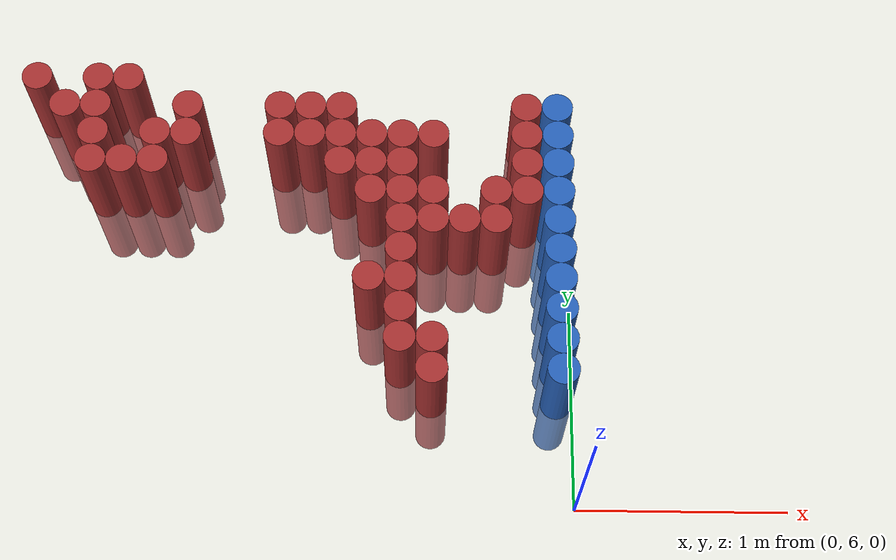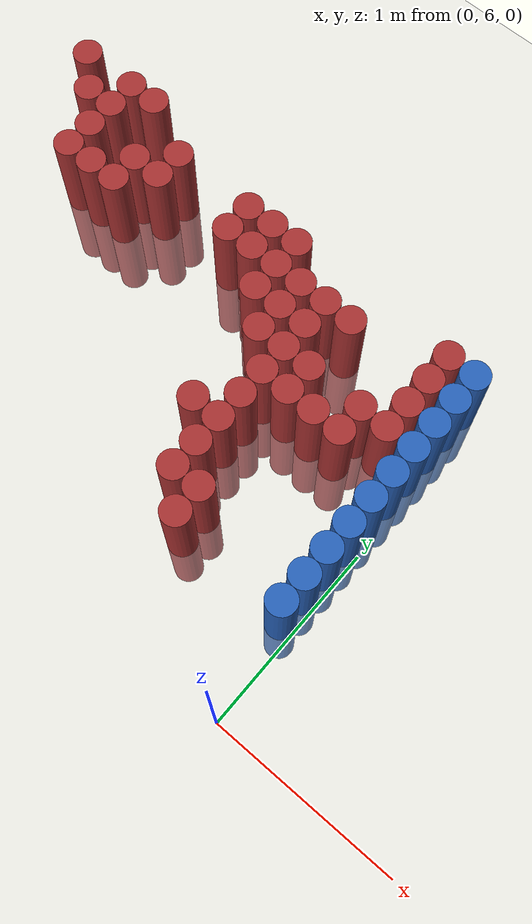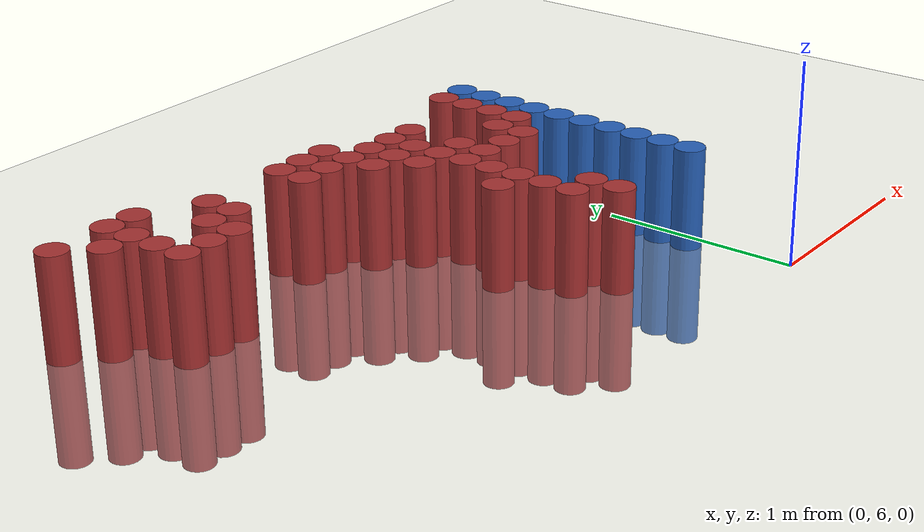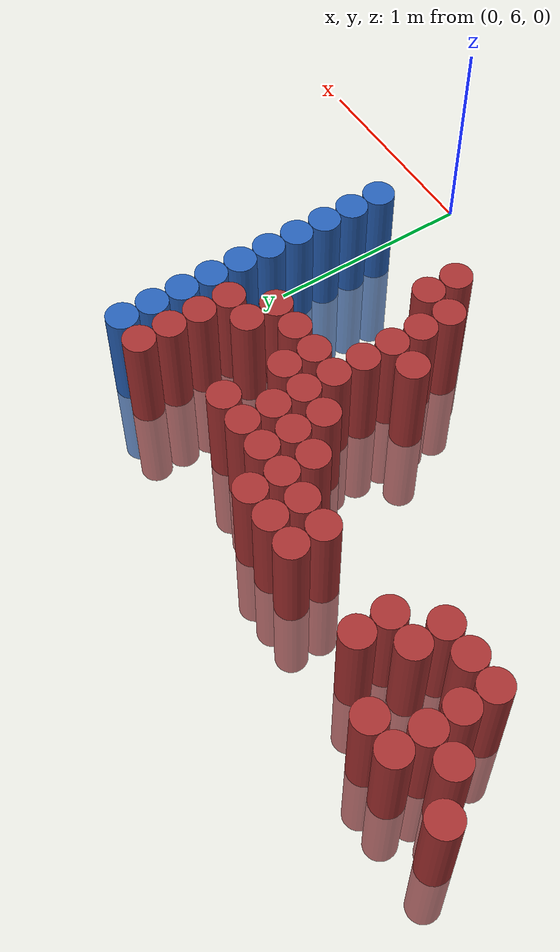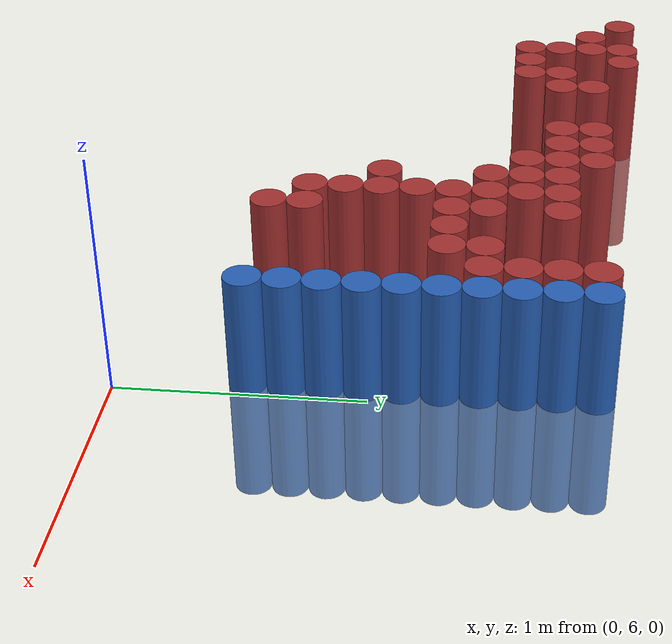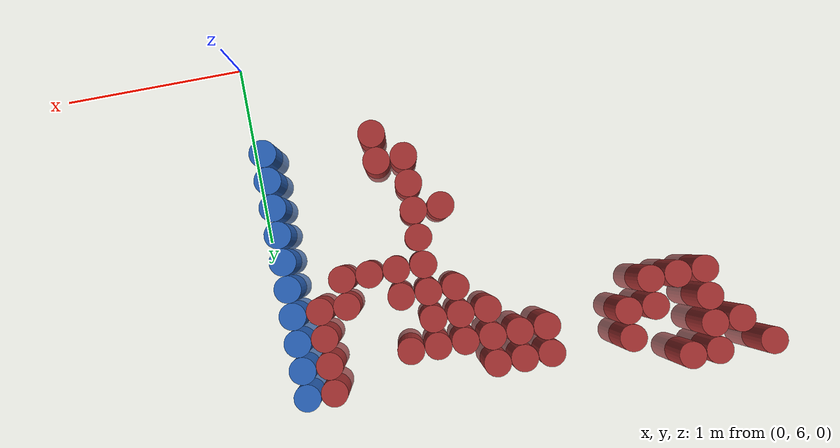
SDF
<sdf version="1.6">
 <world name="default">
  <model name="ground_plane">
   <static>1</static>
   <link name="link">
    <collision name="collision">
     <geometry><plane><normal>0 0 1</normal><size>100 100</size></plane></geometry>
     <surface><friction><ode><mu>100</mu><mu2>50</mu2></ode></friction></surface>
    </collision>
    <visual name="visual">
     <cast_shadows>0</cast_shadows>
     <geometry><plane><normal>0 0 1</normal><size>100 100</size></plane></geometry>
     <material>
      <script><uri>file://media/materials/scripts/gazebo.material</uri><name>Gazebo/Grey</name></script>
     </material>
    </visual>
   </link>
  </model>
  <model name="unit_cylinder_188">
   <static>1</static>
   <pose>-2.625000 8.025000 0.000000 0.000000 0.000000 0.000000</pose>
   <link name="link">
    <inertial>
     <mass>1</mass>
     <inertia><ixx>0.145833</ixx><ixy>0</ixy><ixz>0</ixz><iyy>0.145833</iyy><iyz>0</iyz><izz>0.125</izz></inertia>
    </inertial>
    <collision name="collision">
     <geometry><cylinder><radius>0.075000</radius><length>1</length></cylinder></geometry>
    </collision>
    <visual name="visual">
     <geometry><cylinder><radius>0.075000</radius><length>1</length></cylinder></geometry>
     <material>
      <ambient>0.648000 0.192000 0.192000 1</ambient>
      <diffuse>0.648000 0.192000 0.192000 1</diffuse>
     </material>
     <material>
      <script><name>Gazebo/Grey</name><uri>file://media/materials/scripts/gazebo.material</uri></script>
     </material>
    </visual>
   </link>
  </model>
  <model name="unit_cylinder_195">
   <static>1</static>
   <pose>-2.475000 7.875000 0.000000 0.000000 0.000000 0.000000</pose>
   <link name="link">
    <inertial>
     <mass>1</mass>
     <inertia><ixx>0.145833</ixx><ixy>0</ixy><ixz>0</ixz><iyy>0.145833</iyy><iyz>0</iyz><izz>0.125</izz></inertia>
    </inertial>
    <collision name="collision">
     <geometry><cylinder><radius>0.075000</radius><length>1</length></cylinder></geometry>
    </collision>
    <visual name="visual">
     <geometry><cylinder><radius>0.075000</radius><length>1</length></cylinder></geometry>
     <material>
      <ambient>0.648000 0.192000 0.192000 1</ambient>
      <diffuse>0.648000 0.192000 0.192000 1</diffuse>
     </material>
     <material>
      <script><name>Gazebo/Grey</name><uri>file://media/materials/scripts/gazebo.material</uri></script>
     </material>
    </visual>
   </link>
  </model>
  <model name="unit_cylinder_201">
   <static>1</static>
   <pose>-2.325000 7.575000 0.000000 0.000000 0.000000 0.000000</pose>
   <link name="link">
    <inertial>
     <mass>1</mass>
     <inertia><ixx>0.145833</ixx><ixy>0</ixy><ixz>0</ixz><iyy>0.145833</iyy><iyz>0</iyz><izz>0.125</izz></inertia>
    </inertial>
    <collision name="collision">
     <geometry><cylinder><radius>0.075000</radius><length>1</length></cylinder></geometry>
    </collision>
    <visual name="visual">
     <geometry><cylinder><radius>0.075000</radius><length>1</length></cylinder></geometry>
     <material>
      <ambient>0.648000 0.192000 0.192000 1</ambient>
      <diffuse>0.648000 0.192000 0.192000 1</diffuse>
     </material>
     <material>
      <script><name>Gazebo/Grey</name><uri>file://media/materials/scripts/gazebo.material</uri></script>
     </material>
    </visual>
   </link>
  </model>
  <model name="unit_cylinder_202">
   <static>1</static>
   <pose>-2.325000 7.725000 0.000000 0.000000 0.000000 0.000000</pose>
   <link name="link">
    <inertial>
     <mass>1</mass>
     <inertia><ixx>0.145833</ixx><ixy>0</ixy><ixz>0</ixz><iyy>0.145833</iyy><iyz>0</iyz><izz>0.125</izz></inertia>
    </inertial>
    <collision name="collision">
     <geometry><cylinder><radius>0.075000</radius><length>1</length></cylinder></geometry>
    </collision>
    <visual name="visual">
     <geometry><cylinder><radius>0.075000</radius><length>1</length></cylinder></geometry>
     <material>
      <ambient>0.648000 0.192000 0.192000 1</ambient>
      <diffuse>0.648000 0.192000 0.192000 1</diffuse>
     </material>
     <material>
      <script><name>Gazebo/Grey</name><uri>file://media/materials/scripts/gazebo.material</uri></script>
     </material>
    </visual>
   </link>
  </model>
  <model name="unit_cylinder_203">
   <static>1</static>
   <pose>-2.325000 7.875000 0.000000 0.000000 0.000000 0.000000</pose>
   <link name="link">
    <inertial>
     <mass>1</mass>
     <inertia><ixx>0.145833</ixx><ixy>0</ixy><ixz>0</ixz><iyy>0.145833</iyy><iyz>0</iyz><izz>0.125</izz></inertia>
    </inertial>
    <collision name="collision">
     <geometry><cylinder><radius>0.075000</radius><length>1</length></cylinder></geometry>
    </collision>
    <visual name="visual">
     <geometry><cylinder><radius>0.075000</radius><length>1</length></cylinder></geometry>
     <material>
      <ambient>0.648000 0.192000 0.192000 1</ambient>
      <diffuse>0.648000 0.192000 0.192000 1</diffuse>
     </material>
     <material>
      <script><name>Gazebo/Grey</name><uri>file://media/materials/scripts/gazebo.material</uri></script>
     </material>
    </visual>
   </link>
  </model>
  <model name="unit_cylinder_204">
   <static>1</static>
   <pose>-2.325000 8.025000 0.000000 0.000000 0.000000 0.000000</pose>
   <link name="link">
    <inertial>
     <mass>1</mass>
     <inertia><ixx>0.145833</ixx><ixy>0</ixy><ixz>0</ixz><iyy>0.145833</iyy><iyz>0</iyz><izz>0.125</izz></inertia>
    </inertial>
    <collision name="collision">
     <geometry><cylinder><radius>0.075000</radius><length>1</length></cylinder></geometry>
    </collision>
    <visual name="visual">
     <geometry><cylinder><radius>0.075000</radius><length>1</length></cylinder></geometry>
     <material>
      <ambient>0.648000 0.192000 0.192000 1</ambient>
      <diffuse>0.648000 0.192000 0.192000 1</diffuse>
     </material>
     <material>
      <script><name>Gazebo/Grey</name><uri>file://media/materials/scripts/gazebo.material</uri></script>
     </material>
    </visual>
   </link>
  </model>
  <model name="unit_cylinder_206">
   <static>1</static>
   <pose>-2.175000 7.575000 0.000000 0.000000 0.000000 0.000000</pose>
   <link name="link">
    <inertial>
     <mass>1</mass>
     <inertia><ixx>0.145833</ixx><ixy>0</ixy><ixz>0</ixz><iyy>0.145833</iyy><iyz>0</iyz><izz>0.125</izz></inertia>
    </inertial>
    <collision name="collision">
     <geometry><cylinder><radius>0.075000</radius><length>1</length></cylinder></geometry>
    </collision>
    <visual name="visual">
     <geometry><cylinder><radius>0.075000</radius><length>1</length></cylinder></geometry>
     <material>
      <ambient>0.648000 0.192000 0.192000 1</ambient>
      <diffuse>0.648000 0.192000 0.192000 1</diffuse>
     </material>
     <material>
      <script><name>Gazebo/Grey</name><uri>file://media/materials/scripts/gazebo.material</uri></script>
     </material>
    </visual>
   </link>
  </model>
  <model name="unit_cylinder_207">
   <static>1</static>
   <pose>-2.175000 8.025000 0.000000 0.000000 0.000000 0.000000</pose>
   <link name="link">
    <inertial>
     <mass>1</mass>
     <inertia><ixx>0.145833</ixx><ixy>0</ixy><ixz>0</ixz><iyy>0.145833</iyy><iyz>0</iyz><izz>0.125</izz></inertia>
    </inertial>
    <collision name="collision">
     <geometry><cylinder><radius>0.075000</radius><length>1</length></cylinder></geometry>
    </collision>
    <visual name="visual">
     <geometry><cylinder><radius>0.075000</radius><length>1</length></cylinder></geometry>
     <material>
      <ambient>0.648000 0.192000 0.192000 1</ambient>
      <diffuse>0.648000 0.192000 0.192000 1</diffuse>
     </material>
     <material>
      <script><name>Gazebo/Grey</name><uri>file://media/materials/scripts/gazebo.material</uri></script>
     </material>
    </visual>
   </link>
  </model>
  <model name="unit_cylinder_209">
   <static>1</static>
   <pose>-2.025000 7.575000 0.000000 0.000000 0.000000 0.000000</pose>
   <link name="link">
    <inertial>
     <mass>1</mass>
     <inertia><ixx>0.145833</ixx><ixy>0</ixy><ixz>0</ixz><iyy>0.145833</iyy><iyz>0</iyz><izz>0.125</izz></inertia>
    </inertial>
    <collision name="collision">
     <geometry><cylinder><radius>0.075000</radius><length>1</length></cylinder></geometry>
    </collision>
    <visual name="visual">
     <geometry><cylinder><radius>0.075000</radius><length>1</length></cylinder></geometry>
     <material>
      <ambient>0.648000 0.192000 0.192000 1</ambient>
      <diffuse>0.648000 0.192000 0.192000 1</diffuse>
     </material>
     <material>
      <script><name>Gazebo/Grey</name><uri>file://media/materials/scripts/gazebo.material</uri></script>
     </material>
    </visual>
   </link>
  </model>
  <model name="unit_cylinder_210">
   <static>1</static>
   <pose>-2.025000 7.725000 0.000000 0.000000 0.000000 0.000000</pose>
   <link name="link">
    <inertial>
     <mass>1</mass>
     <inertia><ixx>0.145833</ixx><ixy>0</ixy><ixz>0</ixz><iyy>0.145833</iyy><iyz>0</iyz><izz>0.125</izz></inertia>
    </inertial>
    <collision name="collision">
     <geometry><cylinder><radius>0.075000</radius><length>1</length></cylinder></geometry>
    </collision>
    <visual name="visual">
     <geometry><cylinder><radius>0.075000</radius><length>1</length></cylinder></geometry>
     <material>
      <ambient>0.648000 0.192000 0.192000 1</ambient>
      <diffuse>0.648000 0.192000 0.192000 1</diffuse>
     </material>
     <material>
      <script><name>Gazebo/Grey</name><uri>file://media/materials/scripts/gazebo.material</uri></script>
     </material>
    </visual>
   </link>
  </model>
  <model name="unit_cylinder_215">
   <static>1</static>
   <pose>-1.875000 7.725000 0.000000 0.000000 0.000000 0.000000</pose>
   <link name="link">
    <inertial>
     <mass>1</mass>
     <inertia><ixx>0.145833</ixx><ixy>0</ixy><ixz>0</ixz><iyy>0.145833</iyy><iyz>0</iyz><izz>0.125</izz></inertia>
    </inertial>
    <collision name="collision">
     <geometry><cylinder><radius>0.075000</radius><length>1</length></cylinder></geometry>
    </collision>
    <visual name="visual">
     <geometry><cylinder><radius>0.075000</radius><length>1</length></cylinder></geometry>
     <material>
      <ambient>0.648000 0.192000 0.192000 1</ambient>
      <diffuse>0.648000 0.192000 0.192000 1</diffuse>
     </material>
     <material>
      <script><name>Gazebo/Grey</name><uri>file://media/materials/scripts/gazebo.material</uri></script>
     </material>
    </visual>
   </link>
  </model>
  <model name="unit_cylinder_216">
   <static>1</static>
   <pose>-1.875000 7.875000 0.000000 0.000000 0.000000 0.000000</pose>
   <link name="link">
    <inertial>
     <mass>1</mass>
     <inertia><ixx>0.145833</ixx><ixy>0</ixy><ixz>0</ixz><iyy>0.145833</iyy><iyz>0</iyz><izz>0.125</izz></inertia>
    </inertial>
    <collision name="collision">
     <geometry><cylinder><radius>0.075000</radius><length>1</length></cylinder></geometry>
    </collision>
    <visual name="visual">
     <geometry><cylinder><radius>0.075000</radius><length>1</length></cylinder></geometry>
     <material>
      <ambient>0.648000 0.192000 0.192000 1</ambient>
      <diffuse>0.648000 0.192000 0.192000 1</diffuse>
     </material>
     <material>
      <script><name>Gazebo/Grey</name><uri>file://media/materials/scripts/gazebo.material</uri></script>
     </material>
    </visual>
   </link>
  </model>
  <model name="unit_cylinder_222">
   <static>1</static>
   <pose>-1.425000 7.725000 0.000000 0.000000 0.000000 0.000000</pose>
   <link name="link">
    <inertial>
     <mass>1</mass>
     <inertia><ixx>0.145833</ixx><ixy>0</ixy><ixz>0</ixz><iyy>0.145833</iyy><iyz>0</iyz><izz>0.125</izz></inertia>
    </inertial>
    <collision name="collision">
     <geometry><cylinder><radius>0.075000</radius><length>1</length></cylinder></geometry>
    </collision>
    <visual name="visual">
     <geometry><cylinder><radius>0.075000</radius><length>1</length></cylinder></geometry>
     <material>
      <ambient>0.648000 0.192000 0.192000 1</ambient>
      <diffuse>0.648000 0.192000 0.192000 1</diffuse>
     </material>
     <material>
      <script><name>Gazebo/Grey</name><uri>file://media/materials/scripts/gazebo.material</uri></script>
     </material>
    </visual>
   </link>
  </model>
  <model name="unit_cylinder_223">
   <static>1</static>
   <pose>-1.425000 7.875000 0.000000 0.000000 0.000000 0.000000</pose>
   <link name="link">
    <inertial>
     <mass>1</mass>
     <inertia><ixx>0.145833</ixx><ixy>0</ixy><ixz>0</ixz><iyy>0.145833</iyy><iyz>0</iyz><izz>0.125</izz></inertia>
    </inertial>
    <collision name="collision">
     <geometry><cylinder><radius>0.075000</radius><length>1</length></cylinder></geometry>
    </collision>
    <visual name="visual">
     <geometry><cylinder><radius>0.075000</radius><length>1</length></cylinder></geometry>
     <material>
      <ambient>0.648000 0.192000 0.192000 1</ambient>
      <diffuse>0.648000 0.192000 0.192000 1</diffuse>
     </material>
     <material>
      <script><name>Gazebo/Grey</name><uri>file://media/materials/scripts/gazebo.material</uri></script>
     </material>
    </visual>
   </link>
  </model>
  <model name="unit_cylinder_228">
   <static>1</static>
   <pose>-1.275000 7.725000 0.000000 0.000000 0.000000 0.000000</pose>
   <link name="link">
    <inertial>
     <mass>1</mass>
     <inertia><ixx>0.145833</ixx><ixy>0</ixy><ixz>0</ixz><iyy>0.145833</iyy><iyz>0</iyz><izz>0.125</izz></inertia>
    </inertial>
    <collision name="collision">
     <geometry><cylinder><radius>0.075000</radius><length>1</length></cylinder></geometry>
    </collision>
    <visual name="visual">
     <geometry><cylinder><radius>0.075000</radius><length>1</length></cylinder></geometry>
     <material>
      <ambient>0.648000 0.192000 0.192000 1</ambient>
      <diffuse>0.648000 0.192000 0.192000 1</diffuse>
     </material>
     <material>
      <script><name>Gazebo/Grey</name><uri>file://media/materials/scripts/gazebo.material</uri></script>
     </material>
    </visual>
   </link>
  </model>
  <model name="unit_cylinder_229">
   <static>1</static>
   <pose>-1.275000 7.875000 0.000000 0.000000 0.000000 0.000000</pose>
   <link name="link">
    <inertial>
     <mass>1</mass>
     <inertia><ixx>0.145833</ixx><ixy>0</ixy><ixz>0</ixz><iyy>0.145833</iyy><iyz>0</iyz><izz>0.125</izz></inertia>
    </inertial>
    <collision name="collision">
     <geometry><cylinder><radius>0.075000</radius><length>1</length></cylinder></geometry>
    </collision>
    <visual name="visual">
     <geometry><cylinder><radius>0.075000</radius><length>1</length></cylinder></geometry>
     <material>
      <ambient>0.648000 0.192000 0.192000 1</ambient>
      <diffuse>0.648000 0.192000 0.192000 1</diffuse>
     </material>
     <material>
      <script><name>Gazebo/Grey</name><uri>file://media/materials/scripts/gazebo.material</uri></script>
     </material>
    </visual>
   </link>
  </model>
  <model name="unit_cylinder_234">
   <static>1</static>
   <pose>-1.125000 7.575000 0.000000 0.000000 0.000000 0.000000</pose>
   <link name="link">
    <inertial>
     <mass>1</mass>
     <inertia><ixx>0.145833</ixx><ixy>0</ixy><ixz>0</ixz><iyy>0.145833</iyy><iyz>0</iyz><izz>0.125</izz></inertia>
    </inertial>
    <collision name="collision">
     <geometry><cylinder><radius>0.075000</radius><length>1</length></cylinder></geometry>
    </collision>
    <visual name="visual">
     <geometry><cylinder><radius>0.075000</radius><length>1</length></cylinder></geometry>
     <material>
      <ambient>0.648000 0.192000 0.192000 1</ambient>
      <diffuse>0.648000 0.192000 0.192000 1</diffuse>
     </material>
     <material>
      <script><name>Gazebo/Grey</name><uri>file://media/materials/scripts/gazebo.material</uri></script>
     </material>
    </visual>
   </link>
  </model>
  <model name="unit_cylinder_235">
   <static>1</static>
   <pose>-1.125000 7.725000 0.000000 0.000000 0.000000 0.000000</pose>
   <link name="link">
    <inertial>
     <mass>1</mass>
     <inertia><ixx>0.145833</ixx><ixy>0</ixy><ixz>0</ixz><iyy>0.145833</iyy><iyz>0</iyz><izz>0.125</izz></inertia>
    </inertial>
    <collision name="collision">
     <geometry><cylinder><radius>0.075000</radius><length>1</length></cylinder></geometry>
    </collision>
    <visual name="visual">
     <geometry><cylinder><radius>0.075000</radius><length>1</length></cylinder></geometry>
     <material>
      <ambient>0.648000 0.192000 0.192000 1</ambient>
      <diffuse>0.648000 0.192000 0.192000 1</diffuse>
     </material>
     <material>
      <script><name>Gazebo/Grey</name><uri>file://media/materials/scripts/gazebo.material</uri></script>
     </material>
    </visual>
   </link>
  </model>
  <model name="unit_cylinder_236">
   <static>1</static>
   <pose>-1.125000 7.875000 0.000000 0.000000 0.000000 0.000000</pose>
   <link name="link">
    <inertial>
     <mass>1</mass>
     <inertia><ixx>0.145833</ixx><ixy>0</ixy><ixz>0</ixz><iyy>0.145833</iyy><iyz>0</iyz><izz>0.125</izz></inertia>
    </inertial>
    <collision name="collision">
     <geometry><cylinder><radius>0.075000</radius><length>1</length></cylinder></geometry>
    </collision>
    <visual name="visual">
     <geometry><cylinder><radius>0.075000</radius><length>1</length></cylinder></geometry>
     <material>
      <ambient>0.648000 0.192000 0.192000 1</ambient>
      <diffuse>0.648000 0.192000 0.192000 1</diffuse>
     </material>
     <material>
      <script><name>Gazebo/Grey</name><uri>file://media/materials/scripts/gazebo.material</uri></script>
     </material>
    </visual>
   </link>
  </model>
  <model name="unit_cylinder_242">
   <static>1</static>
   <pose>-0.975000 6.975000 0.000000 0.000000 0.000000 0.000000</pose>
   <link name="link">
    <inertial>
     <mass>1</mass>
     <inertia><ixx>0.145833</ixx><ixy>0</ixy><ixz>0</ixz><iyy>0.145833</iyy><iyz>0</iyz><izz>0.125</izz></inertia>
    </inertial>
    <collision name="collision">
     <geometry><cylinder><radius>0.075000</radius><length>1</length></cylinder></geometry>
    </collision>
    <visual name="visual">
     <geometry><cylinder><radius>0.075000</radius><length>1</length></cylinder></geometry>
     <material>
      <ambient>0.648000 0.192000 0.192000 1</ambient>
      <diffuse>0.648000 0.192000 0.192000 1</diffuse>
     </material>
     <material>
      <script><name>Gazebo/Grey</name><uri>file://media/materials/scripts/gazebo.material</uri></script>
     </material>
    </visual>
   </link>
  </model>
  <model name="unit_cylinder_243">
   <static>1</static>
   <pose>-0.975000 7.425000 0.000000 0.000000 0.000000 0.000000</pose>
   <link name="link">
    <inertial>
     <mass>1</mass>
     <inertia><ixx>0.145833</ixx><ixy>0</ixy><ixz>0</ixz><iyy>0.145833</iyy><iyz>0</iyz><izz>0.125</izz></inertia>
    </inertial>
    <collision name="collision">
     <geometry><cylinder><radius>0.075000</radius><length>1</length></cylinder></geometry>
    </collision>
    <visual name="visual">
     <geometry><cylinder><radius>0.075000</radius><length>1</length></cylinder></geometry>
     <material>
      <ambient>0.648000 0.192000 0.192000 1</ambient>
      <diffuse>0.648000 0.192000 0.192000 1</diffuse>
     </material>
     <material>
      <script><name>Gazebo/Grey</name><uri>file://media/materials/scripts/gazebo.material</uri></script>
     </material>
    </visual>
   </link>
  </model>
  <model name="unit_cylinder_244">
   <static>1</static>
   <pose>-0.975000 7.575000 0.000000 0.000000 0.000000 0.000000</pose>
   <link name="link">
    <inertial>
     <mass>1</mass>
     <inertia><ixx>0.145833</ixx><ixy>0</ixy><ixz>0</ixz><iyy>0.145833</iyy><iyz>0</iyz><izz>0.125</izz></inertia>
    </inertial>
    <collision name="collision">
     <geometry><cylinder><radius>0.075000</radius><length>1</length></cylinder></geometry>
    </collision>
    <visual name="visual">
     <geometry><cylinder><radius>0.075000</radius><length>1</length></cylinder></geometry>
     <material>
      <ambient>0.648000 0.192000 0.192000 1</ambient>
      <diffuse>0.648000 0.192000 0.192000 1</diffuse>
     </material>
     <material>
      <script><name>Gazebo/Grey</name><uri>file://media/materials/scripts/gazebo.material</uri></script>
     </material>
    </visual>
   </link>
  </model>
  <model name="unit_cylinder_245">
   <static>1</static>
   <pose>-0.975000 7.725000 0.000000 0.000000 0.000000 0.000000</pose>
   <link name="link">
    <inertial>
     <mass>1</mass>
     <inertia><ixx>0.145833</ixx><ixy>0</ixy><ixz>0</ixz><iyy>0.145833</iyy><iyz>0</iyz><izz>0.125</izz></inertia>
    </inertial>
    <collision name="collision">
     <geometry><cylinder><radius>0.075000</radius><length>1</length></cylinder></geometry>
    </collision>
    <visual name="visual">
     <geometry><cylinder><radius>0.075000</radius><length>1</length></cylinder></geometry>
     <material>
      <ambient>0.648000 0.192000 0.192000 1</ambient>
      <diffuse>0.648000 0.192000 0.192000 1</diffuse>
     </material>
     <material>
      <script><name>Gazebo/Grey</name><uri>file://media/materials/scripts/gazebo.material</uri></script>
     </material>
    </visual>
   </link>
  </model>
  <model name="unit_cylinder_249">
   <static>1</static>
   <pose>-0.825000 6.675000 0.000000 0.000000 0.000000 0.000000</pose>
   <link name="link">
    <inertial>
     <mass>1</mass>
     <inertia><ixx>0.145833</ixx><ixy>0</ixy><ixz>0</ixz><iyy>0.145833</iyy><iyz>0</iyz><izz>0.125</izz></inertia>
    </inertial>
    <collision name="collision">
     <geometry><cylinder><radius>0.075000</radius><length>1</length></cylinder></geometry>
    </collision>
    <visual name="visual">
     <geometry><cylinder><radius>0.075000</radius><length>1</length></cylinder></geometry>
     <material>
      <ambient>0.648000 0.192000 0.192000 1</ambient>
      <diffuse>0.648000 0.192000 0.192000 1</diffuse>
     </material>
     <material>
      <script><name>Gazebo/Grey</name><uri>file://media/materials/scripts/gazebo.material</uri></script>
     </material>
    </visual>
   </link>
  </model>
  <model name="unit_cylinder_250">
   <static>1</static>
   <pose>-0.825000 6.825000 0.000000 0.000000 0.000000 0.000000</pose>
   <link name="link">
    <inertial>
     <mass>1</mass>
     <inertia><ixx>0.145833</ixx><ixy>0</ixy><ixz>0</ixz><iyy>0.145833</iyy><iyz>0</iyz><izz>0.125</izz></inertia>
    </inertial>
    <collision name="collision">
     <geometry><cylinder><radius>0.075000</radius><length>1</length></cylinder></geometry>
    </collision>
    <visual name="visual">
     <geometry><cylinder><radius>0.075000</radius><length>1</length></cylinder></geometry>
     <material>
      <ambient>0.648000 0.192000 0.192000 1</ambient>
      <diffuse>0.648000 0.192000 0.192000 1</diffuse>
     </material>
     <material>
      <script><name>Gazebo/Grey</name><uri>file://media/materials/scripts/gazebo.material</uri></script>
     </material>
    </visual>
   </link>
  </model>
  <model name="unit_cylinder_251">
   <static>1</static>
   <pose>-0.825000 6.975000 0.000000 0.000000 0.000000 0.000000</pose>
   <link name="link">
    <inertial>
     <mass>1</mass>
     <inertia><ixx>0.145833</ixx><ixy>0</ixy><ixz>0</ixz><iyy>0.145833</iyy><iyz>0</iyz><izz>0.125</izz></inertia>
    </inertial>
    <collision name="collision">
     <geometry><cylinder><radius>0.075000</radius><length>1</length></cylinder></geometry>
    </collision>
    <visual name="visual">
     <geometry><cylinder><radius>0.075000</radius><length>1</length></cylinder></geometry>
     <material>
      <ambient>0.648000 0.192000 0.192000 1</ambient>
      <diffuse>0.648000 0.192000 0.192000 1</diffuse>
     </material>
     <material>
      <script><name>Gazebo/Grey</name><uri>file://media/materials/scripts/gazebo.material</uri></script>
     </material>
    </visual>
   </link>
  </model>
  <model name="unit_cylinder_252">
   <static>1</static>
   <pose>-0.825000 7.125000 0.000000 0.000000 0.000000 0.000000</pose>
   <link name="link">
    <inertial>
     <mass>1</mass>
     <inertia><ixx>0.145833</ixx><ixy>0</ixy><ixz>0</ixz><iyy>0.145833</iyy><iyz>0</iyz><izz>0.125</izz></inertia>
    </inertial>
    <collision name="collision">
     <geometry><cylinder><radius>0.075000</radius><length>1</length></cylinder></geometry>
    </collision>
    <visual name="visual">
     <geometry><cylinder><radius>0.075000</radius><length>1</length></cylinder></geometry>
     <material>
      <ambient>0.648000 0.192000 0.192000 1</ambient>
      <diffuse>0.648000 0.192000 0.192000 1</diffuse>
     </material>
     <material>
      <script><name>Gazebo/Grey</name><uri>file://media/materials/scripts/gazebo.material</uri></script>
     </material>
    </visual>
   </link>
  </model>
  <model name="unit_cylinder_253">
   <static>1</static>
   <pose>-0.825000 7.275000 0.000000 0.000000 0.000000 0.000000</pose>
   <link name="link">
    <inertial>
     <mass>1</mass>
     <inertia><ixx>0.145833</ixx><ixy>0</ixy><ixz>0</ixz><iyy>0.145833</iyy><iyz>0</iyz><izz>0.125</izz></inertia>
    </inertial>
    <collision name="collision">
     <geometry><cylinder><radius>0.075000</radius><length>1</length></cylinder></geometry>
    </collision>
    <visual name="visual">
     <geometry><cylinder><radius>0.075000</radius><length>1</length></cylinder></geometry>
     <material>
      <ambient>0.648000 0.192000 0.192000 1</ambient>
      <diffuse>0.648000 0.192000 0.192000 1</diffuse>
     </material>
     <material>
      <script><name>Gazebo/Grey</name><uri>file://media/materials/scripts/gazebo.material</uri></script>
     </material>
    </visual>
   </link>
  </model>
  <model name="unit_cylinder_254">
   <static>1</static>
   <pose>-0.825000 7.425000 0.000000 0.000000 0.000000 0.000000</pose>
   <link name="link">
    <inertial>
     <mass>1</mass>
     <inertia><ixx>0.145833</ixx><ixy>0</ixy><ixz>0</ixz><iyy>0.145833</iyy><iyz>0</iyz><izz>0.125</izz></inertia>
    </inertial>
    <collision name="collision">
     <geometry><cylinder><radius>0.075000</radius><length>1</length></cylinder></geometry>
    </collision>
    <visual name="visual">
     <geometry><cylinder><radius>0.075000</radius><length>1</length></cylinder></geometry>
     <material>
      <ambient>0.648000 0.192000 0.192000 1</ambient>
      <diffuse>0.648000 0.192000 0.192000 1</diffuse>
     </material>
     <material>
      <script><name>Gazebo/Grey</name><uri>file://media/materials/scripts/gazebo.material</uri></script>
     </material>
    </visual>
   </link>
  </model>
  <model name="unit_cylinder_255">
   <static>1</static>
   <pose>-0.825000 7.575000 0.000000 0.000000 0.000000 0.000000</pose>
   <link name="link">
    <inertial>
     <mass>1</mass>
     <inertia><ixx>0.145833</ixx><ixy>0</ixy><ixz>0</ixz><iyy>0.145833</iyy><iyz>0</iyz><izz>0.125</izz></inertia>
    </inertial>
    <collision name="collision">
     <geometry><cylinder><radius>0.075000</radius><length>1</length></cylinder></geometry>
    </collision>
    <visual name="visual">
     <geometry><cylinder><radius>0.075000</radius><length>1</length></cylinder></geometry>
     <material>
      <ambient>0.648000 0.192000 0.192000 1</ambient>
      <diffuse>0.648000 0.192000 0.192000 1</diffuse>
     </material>
     <material>
      <script><name>Gazebo/Grey</name><uri>file://media/materials/scripts/gazebo.material</uri></script>
     </material>
    </visual>
   </link>
  </model>
  <model name="unit_cylinder_256">
   <static>1</static>
   <pose>-0.825000 7.725000 0.000000 0.000000 0.000000 0.000000</pose>
   <link name="link">
    <inertial>
     <mass>1</mass>
     <inertia><ixx>0.145833</ixx><ixy>0</ixy><ixz>0</ixz><iyy>0.145833</iyy><iyz>0</iyz><izz>0.125</izz></inertia>
    </inertial>
    <collision name="collision">
     <geometry><cylinder><radius>0.075000</radius><length>1</length></cylinder></geometry>
    </collision>
    <visual name="visual">
     <geometry><cylinder><radius>0.075000</radius><length>1</length></cylinder></geometry>
     <material>
      <ambient>0.648000 0.192000 0.192000 1</ambient>
      <diffuse>0.648000 0.192000 0.192000 1</diffuse>
     </material>
     <material>
      <script><name>Gazebo/Grey</name><uri>file://media/materials/scripts/gazebo.material</uri></script>
     </material>
    </visual>
   </link>
  </model>
  <model name="unit_cylinder_260">
   <static>1</static>
   <pose>-0.675000 6.525000 0.000000 0.000000 0.000000 0.000000</pose>
   <link name="link">
    <inertial>
     <mass>1</mass>
     <inertia><ixx>0.145833</ixx><ixy>0</ixy><ixz>0</ixz><iyy>0.145833</iyy><iyz>0</iyz><izz>0.125</izz></inertia>
    </inertial>
    <collision name="collision">
     <geometry><cylinder><radius>0.075000</radius><length>1</length></cylinder></geometry>
    </collision>
    <visual name="visual">
     <geometry><cylinder><radius>0.075000</radius><length>1</length></cylinder></geometry>
     <material>
      <ambient>0.648000 0.192000 0.192000 1</ambient>
      <diffuse>0.648000 0.192000 0.192000 1</diffuse>
     </material>
     <material>
      <script><name>Gazebo/Grey</name><uri>file://media/materials/scripts/gazebo.material</uri></script>
     </material>
    </visual>
   </link>
  </model>
  <model name="unit_cylinder_261">
   <static>1</static>
   <pose>-0.675000 6.675000 0.000000 0.000000 0.000000 0.000000</pose>
   <link name="link">
    <inertial>
     <mass>1</mass>
     <inertia><ixx>0.145833</ixx><ixy>0</ixy><ixz>0</ixz><iyy>0.145833</iyy><iyz>0</iyz><izz>0.125</izz></inertia>
    </inertial>
    <collision name="collision">
     <geometry><cylinder><radius>0.075000</radius><length>1</length></cylinder></geometry>
    </collision>
    <visual name="visual">
     <geometry><cylinder><radius>0.075000</radius><length>1</length></cylinder></geometry>
     <material>
      <ambient>0.648000 0.192000 0.192000 1</ambient>
      <diffuse>0.648000 0.192000 0.192000 1</diffuse>
     </material>
     <material>
      <script><name>Gazebo/Grey</name><uri>file://media/materials/scripts/gazebo.material</uri></script>
     </material>
    </visual>
   </link>
  </model>
  <model name="unit_cylinder_262">
   <static>1</static>
   <pose>-0.675000 7.275000 0.000000 0.000000 0.000000 0.000000</pose>
   <link name="link">
    <inertial>
     <mass>1</mass>
     <inertia><ixx>0.145833</ixx><ixy>0</ixy><ixz>0</ixz><iyy>0.145833</iyy><iyz>0</iyz><izz>0.125</izz></inertia>
    </inertial>
    <collision name="collision">
     <geometry><cylinder><radius>0.075000</radius><length>1</length></cylinder></geometry>
    </collision>
    <visual name="visual">
     <geometry><cylinder><radius>0.075000</radius><length>1</length></cylinder></geometry>
     <material>
      <ambient>0.648000 0.192000 0.192000 1</ambient>
      <diffuse>0.648000 0.192000 0.192000 1</diffuse>
     </material>
     <material>
      <script><name>Gazebo/Grey</name><uri>file://media/materials/scripts/gazebo.material</uri></script>
     </material>
    </visual>
   </link>
  </model>
  <model name="unit_cylinder_263">
   <static>1</static>
   <pose>-0.675000 7.425000 0.000000 0.000000 0.000000 0.000000</pose>
   <link name="link">
    <inertial>
     <mass>1</mass>
     <inertia><ixx>0.145833</ixx><ixy>0</ixy><ixz>0</ixz><iyy>0.145833</iyy><iyz>0</iyz><izz>0.125</izz></inertia>
    </inertial>
    <collision name="collision">
     <geometry><cylinder><radius>0.075000</radius><length>1</length></cylinder></geometry>
    </collision>
    <visual name="visual">
     <geometry><cylinder><radius>0.075000</radius><length>1</length></cylinder></geometry>
     <material>
      <ambient>0.648000 0.192000 0.192000 1</ambient>
      <diffuse>0.648000 0.192000 0.192000 1</diffuse>
     </material>
     <material>
      <script><name>Gazebo/Grey</name><uri>file://media/materials/scripts/gazebo.material</uri></script>
     </material>
    </visual>
   </link>
  </model>
  <model name="unit_cylinder_264">
   <static>1</static>
   <pose>-0.675000 7.725000 0.000000 0.000000 0.000000 0.000000</pose>
   <link name="link">
    <inertial>
     <mass>1</mass>
     <inertia><ixx>0.145833</ixx><ixy>0</ixy><ixz>0</ixz><iyy>0.145833</iyy><iyz>0</iyz><izz>0.125</izz></inertia>
    </inertial>
    <collision name="collision">
     <geometry><cylinder><radius>0.075000</radius><length>1</length></cylinder></geometry>
    </collision>
    <visual name="visual">
     <geometry><cylinder><radius>0.075000</radius><length>1</length></cylinder></geometry>
     <material>
      <ambient>0.648000 0.192000 0.192000 1</ambient>
      <diffuse>0.648000 0.192000 0.192000 1</diffuse>
     </material>
     <material>
      <script><name>Gazebo/Grey</name><uri>file://media/materials/scripts/gazebo.material</uri></script>
     </material>
    </visual>
   </link>
  </model>
  <model name="unit_cylinder_270">
   <static>1</static>
   <pose>-0.525000 7.275000 0.000000 0.000000 0.000000 0.000000</pose>
   <link name="link">
    <inertial>
     <mass>1</mass>
     <inertia><ixx>0.145833</ixx><ixy>0</ixy><ixz>0</ixz><iyy>0.145833</iyy><iyz>0</iyz><izz>0.125</izz></inertia>
    </inertial>
    <collision name="collision">
     <geometry><cylinder><radius>0.075000</radius><length>1</length></cylinder></geometry>
    </collision>
    <visual name="visual">
     <geometry><cylinder><radius>0.075000</radius><length>1</length></cylinder></geometry>
     <material>
      <ambient>0.648000 0.192000 0.192000 1</ambient>
      <diffuse>0.648000 0.192000 0.192000 1</diffuse>
     </material>
     <material>
      <script><name>Gazebo/Grey</name><uri>file://media/materials/scripts/gazebo.material</uri></script>
     </material>
    </visual>
   </link>
  </model>
  <model name="unit_cylinder_275">
   <static>1</static>
   <pose>-0.375000 7.275000 0.000000 0.000000 0.000000 0.000000</pose>
   <link name="link">
    <inertial>
     <mass>1</mass>
     <inertia><ixx>0.145833</ixx><ixy>0</ixy><ixz>0</ixz><iyy>0.145833</iyy><iyz>0</iyz><izz>0.125</izz></inertia>
    </inertial>
    <collision name="collision">
     <geometry><cylinder><radius>0.075000</radius><length>1</length></cylinder></geometry>
    </collision>
    <visual name="visual">
     <geometry><cylinder><radius>0.075000</radius><length>1</length></cylinder></geometry>
     <material>
      <ambient>0.648000 0.192000 0.192000 1</ambient>
      <diffuse>0.648000 0.192000 0.192000 1</diffuse>
     </material>
     <material>
      <script><name>Gazebo/Grey</name><uri>file://media/materials/scripts/gazebo.material</uri></script>
     </material>
    </visual>
   </link>
  </model>
  <model name="unit_cylinder_276">
   <static>1</static>
   <pose>-0.375000 7.425000 0.000000 0.000000 0.000000 0.000000</pose>
   <link name="link">
    <inertial>
     <mass>1</mass>
     <inertia><ixx>0.145833</ixx><ixy>0</ixy><ixz>0</ixz><iyy>0.145833</iyy><iyz>0</iyz><izz>0.125</izz></inertia>
    </inertial>
    <collision name="collision">
     <geometry><cylinder><radius>0.075000</radius><length>1</length></cylinder></geometry>
    </collision>
    <visual name="visual">
     <geometry><cylinder><radius>0.075000</radius><length>1</length></cylinder></geometry>
     <material>
      <ambient>0.648000 0.192000 0.192000 1</ambient>
      <diffuse>0.648000 0.192000 0.192000 1</diffuse>
     </material>
     <material>
      <script><name>Gazebo/Grey</name><uri>file://media/materials/scripts/gazebo.material</uri></script>
     </material>
    </visual>
   </link>
  </model>
  <model name="unit_cylinder_285">
   <static>1</static>
   <pose>-0.225000 7.425000 0.000000 0.000000 0.000000 0.000000</pose>
   <link name="link">
    <inertial>
     <mass>1</mass>
     <inertia><ixx>0.145833</ixx><ixy>0</ixy><ixz>0</ixz><iyy>0.145833</iyy><iyz>0</iyz><izz>0.125</izz></inertia>
    </inertial>
    <collision name="collision">
     <geometry><cylinder><radius>0.075000</radius><length>1</length></cylinder></geometry>
    </collision>
    <visual name="visual">
     <geometry><cylinder><radius>0.075000</radius><length>1</length></cylinder></geometry>
     <material>
      <ambient>0.648000 0.192000 0.192000 1</ambient>
      <diffuse>0.648000 0.192000 0.192000 1</diffuse>
     </material>
     <material>
      <script><name>Gazebo/Grey</name><uri>file://media/materials/scripts/gazebo.material</uri></script>
     </material>
    </visual>
   </link>
  </model>
  <model name="unit_cylinder_286">
   <static>1</static>
   <pose>-0.225000 7.575000 0.000000 0.000000 0.000000 0.000000</pose>
   <link name="link">
    <inertial>
     <mass>1</mass>
     <inertia><ixx>0.145833</ixx><ixy>0</ixy><ixz>0</ixz><iyy>0.145833</iyy><iyz>0</iyz><izz>0.125</izz></inertia>
    </inertial>
    <collision name="collision">
     <geometry><cylinder><radius>0.075000</radius><length>1</length></cylinder></geometry>
    </collision>
    <visual name="visual">
     <geometry><cylinder><radius>0.075000</radius><length>1</length></cylinder></geometry>
     <material>
      <ambient>0.648000 0.192000 0.192000 1</ambient>
      <diffuse>0.648000 0.192000 0.192000 1</diffuse>
     </material>
     <material>
      <script><name>Gazebo/Grey</name><uri>file://media/materials/scripts/gazebo.material</uri></script>
     </material>
    </visual>
   </link>
  </model>
  <model name="unit_cylinder_287">
   <static>1</static>
   <pose>-0.225000 7.725000 0.000000 0.000000 0.000000 0.000000</pose>
   <link name="link">
    <inertial>
     <mass>1</mass>
     <inertia><ixx>0.145833</ixx><ixy>0</ixy><ixz>0</ixz><iyy>0.145833</iyy><iyz>0</iyz><izz>0.125</izz></inertia>
    </inertial>
    <collision name="collision">
     <geometry><cylinder><radius>0.075000</radius><length>1</length></cylinder></geometry>
    </collision>
    <visual name="visual">
     <geometry><cylinder><radius>0.075000</radius><length>1</length></cylinder></geometry>
     <material>
      <ambient>0.648000 0.192000 0.192000 1</ambient>
      <diffuse>0.648000 0.192000 0.192000 1</diffuse>
     </material>
     <material>
      <script><name>Gazebo/Grey</name><uri>file://media/materials/scripts/gazebo.material</uri></script>
     </material>
    </visual>
   </link>
  </model>
  <model name="unit_cylinder_288">
   <static>1</static>
   <pose>-0.225000 7.875000 0.000000 0.000000 0.000000 0.000000</pose>
   <link name="link">
    <inertial>
     <mass>1</mass>
     <inertia><ixx>0.145833</ixx><ixy>0</ixy><ixz>0</ixz><iyy>0.145833</iyy><iyz>0</iyz><izz>0.125</izz></inertia>
    </inertial>
    <collision name="collision">
     <geometry><cylinder><radius>0.075000</radius><length>1</length></cylinder></geometry>
    </collision>
    <visual name="visual">
     <geometry><cylinder><radius>0.075000</radius><length>1</length></cylinder></geometry>
     <material>
      <ambient>0.648000 0.192000 0.192000 1</ambient>
      <diffuse>0.648000 0.192000 0.192000 1</diffuse>
     </material>
     <material>
      <script><name>Gazebo/Grey</name><uri>file://media/materials/scripts/gazebo.material</uri></script>
     </material>
    </visual>
   </link>
  </model>
  <model name="unit_cylinder_302">
   <static>1</static>
   <pose>-0.075000 6.525000 0.000000 0.000000 0.000000 0.000000</pose>
   <link name="link">
    <inertial>
     <mass>1</mass>
     <inertia><ixx>0.145833</ixx><ixy>0</ixy><ixz>0</ixz><iyy>0.145833</iyy><iyz>0</iyz><izz>0.125</izz></inertia>
    </inertial>
    <collision name="collision">
     <geometry><cylinder><radius>0.075000</radius><length>1</length></cylinder></geometry>
    </collision>
    <visual name="visual">
     <geometry><cylinder><radius>0.075000</radius><length>1</length></cylinder></geometry>
     <material>
      <ambient>0.152000 0.379000 0.720000 1</ambient>
      <diffuse>0.152000 0.379000 0.720000 1</diffuse>
     </material>
     <material>
      <script><name>Gazebo/Grey</name><uri>file://media/materials/scripts/gazebo.material</uri></script>
     </material>
    </visual>
   </link>
  </model>
  <model name="unit_cylinder_303">
   <static>1</static>
   <pose>-0.075000 6.675000 0.000000 0.000000 0.000000 0.000000</pose>
   <link name="link">
    <inertial>
     <mass>1</mass>
     <inertia><ixx>0.145833</ixx><ixy>0</ixy><ixz>0</ixz><iyy>0.145833</iyy><iyz>0</iyz><izz>0.125</izz></inertia>
    </inertial>
    <collision name="collision">
     <geometry><cylinder><radius>0.075000</radius><length>1</length></cylinder></geometry>
    </collision>
    <visual name="visual">
     <geometry><cylinder><radius>0.075000</radius><length>1</length></cylinder></geometry>
     <material>
      <ambient>0.152000 0.379000 0.720000 1</ambient>
      <diffuse>0.152000 0.379000 0.720000 1</diffuse>
     </material>
     <material>
      <script><name>Gazebo/Grey</name><uri>file://media/materials/scripts/gazebo.material</uri></script>
     </material>
    </visual>
   </link>
  </model>
  <model name="unit_cylinder_304">
   <static>1</static>
   <pose>-0.075000 6.825000 0.000000 0.000000 0.000000 0.000000</pose>
   <link name="link">
    <inertial>
     <mass>1</mass>
     <inertia><ixx>0.145833</ixx><ixy>0</ixy><ixz>0</ixz><iyy>0.145833</iyy><iyz>0</iyz><izz>0.125</izz></inertia>
    </inertial>
    <collision name="collision">
     <geometry><cylinder><radius>0.075000</radius><length>1</length></cylinder></geometry>
    </collision>
    <visual name="visual">
     <geometry><cylinder><radius>0.075000</radius><length>1</length></cylinder></geometry>
     <material>
      <ambient>0.152000 0.379000 0.720000 1</ambient>
      <diffuse>0.152000 0.379000 0.720000 1</diffuse>
     </material>
     <material>
      <script><name>Gazebo/Grey</name><uri>file://media/materials/scripts/gazebo.material</uri></script>
     </material>
    </visual>
   </link>
  </model>
  <model name="unit_cylinder_305">
   <static>1</static>
   <pose>-0.075000 6.975000 0.000000 0.000000 0.000000 0.000000</pose>
   <link name="link">
    <inertial>
     <mass>1</mass>
     <inertia><ixx>0.145833</ixx><ixy>0</ixy><ixz>0</ixz><iyy>0.145833</iyy><iyz>0</iyz><izz>0.125</izz></inertia>
    </inertial>
    <collision name="collision">
     <geometry><cylinder><radius>0.075000</radius><length>1</length></cylinder></geometry>
    </collision>
    <visual name="visual">
     <geometry><cylinder><radius>0.075000</radius><length>1</length></cylinder></geometry>
     <material>
      <ambient>0.152000 0.379000 0.720000 1</ambient>
      <diffuse>0.152000 0.379000 0.720000 1</diffuse>
     </material>
     <material>
      <script><name>Gazebo/Grey</name><uri>file://media/materials/scripts/gazebo.material</uri></script>
     </material>
    </visual>
   </link>
  </model>
  <model name="unit_cylinder_306">
   <static>1</static>
   <pose>-0.075000 7.125000 0.000000 0.000000 0.000000 0.000000</pose>
   <link name="link">
    <inertial>
     <mass>1</mass>
     <inertia><ixx>0.145833</ixx><ixy>0</ixy><ixz>0</ixz><iyy>0.145833</iyy><iyz>0</iyz><izz>0.125</izz></inertia>
    </inertial>
    <collision name="collision">
     <geometry><cylinder><radius>0.075000</radius><length>1</length></cylinder></geometry>
    </collision>
    <visual name="visual">
     <geometry><cylinder><radius>0.075000</radius><length>1</length></cylinder></geometry>
     <material>
      <ambient>0.152000 0.379000 0.720000 1</ambient>
      <diffuse>0.152000 0.379000 0.720000 1</diffuse>
     </material>
     <material>
      <script><name>Gazebo/Grey</name><uri>file://media/materials/scripts/gazebo.material</uri></script>
     </material>
    </visual>
   </link>
  </model>
  <model name="unit_cylinder_307">
   <static>1</static>
   <pose>-0.075000 7.275000 0.000000 0.000000 0.000000 0.000000</pose>
   <link name="link">
    <inertial>
     <mass>1</mass>
     <inertia><ixx>0.145833</ixx><ixy>0</ixy><ixz>0</ixz><iyy>0.145833</iyy><iyz>0</iyz><izz>0.125</izz></inertia>
    </inertial>
    <collision name="collision">
     <geometry><cylinder><radius>0.075000</radius><length>1</length></cylinder></geometry>
    </collision>
    <visual name="visual">
     <geometry><cylinder><radius>0.075000</radius><length>1</length></cylinder></geometry>
     <material>
      <ambient>0.152000 0.379000 0.720000 1</ambient>
      <diffuse>0.152000 0.379000 0.720000 1</diffuse>
     </material>
     <material>
      <script><name>Gazebo/Grey</name><uri>file://media/materials/scripts/gazebo.material</uri></script>
     </material>
    </visual>
   </link>
  </model>
  <model name="unit_cylinder_308">
   <static>1</static>
   <pose>-0.075000 7.425000 0.000000 0.000000 0.000000 0.000000</pose>
   <link name="link">
    <inertial>
     <mass>1</mass>
     <inertia><ixx>0.145833</ixx><ixy>0</ixy><ixz>0</ixz><iyy>0.145833</iyy><iyz>0</iyz><izz>0.125</izz></inertia>
    </inertial>
    <collision name="collision">
     <geometry><cylinder><radius>0.075000</radius><length>1</length></cylinder></geometry>
    </collision>
    <visual name="visual">
     <geometry><cylinder><radius>0.075000</radius><length>1</length></cylinder></geometry>
     <material>
      <ambient>0.152000 0.379000 0.720000 1</ambient>
      <diffuse>0.152000 0.379000 0.720000 1</diffuse>
     </material>
     <material>
      <script><name>Gazebo/Grey</name><uri>file://media/materials/scripts/gazebo.material</uri></script>
     </material>
    </visual>
   </link>
  </model>
  <model name="unit_cylinder_309">
   <static>1</static>
   <pose>-0.075000 7.575000 0.000000 0.000000 0.000000 0.000000</pose>
   <link name="link">
    <inertial>
     <mass>1</mass>
     <inertia><ixx>0.145833</ixx><ixy>0</ixy><ixz>0</ixz><iyy>0.145833</iyy><iyz>0</iyz><izz>0.125</izz></inertia>
    </inertial>
    <collision name="collision">
     <geometry><cylinder><radius>0.075000</radius><length>1</length></cylinder></geometry>
    </collision>
    <visual name="visual">
     <geometry><cylinder><radius>0.075000</radius><length>1</length></cylinder></geometry>
     <material>
      <ambient>0.152000 0.379000 0.720000 1</ambient>
      <diffuse>0.152000 0.379000 0.720000 1</diffuse>
     </material>
     <material>
      <script><name>Gazebo/Grey</name><uri>file://media/materials/scripts/gazebo.material</uri></script>
     </material>
    </visual>
   </link>
  </model>
  <model name="unit_cylinder_310">
   <static>1</static>
   <pose>-0.075000 7.725000 0.000000 0.000000 0.000000 0.000000</pose>
   <link name="link">
    <inertial>
     <mass>1</mass>
     <inertia><ixx>0.145833</ixx><ixy>0</ixy><ixz>0</ixz><iyy>0.145833</iyy><iyz>0</iyz><izz>0.125</izz></inertia>
    </inertial>
    <collision name="collision">
     <geometry><cylinder><radius>0.075000</radius><length>1</length></cylinder></geometry>
    </collision>
    <visual name="visual">
     <geometry><cylinder><radius>0.075000</radius><length>1</length></cylinder></geometry>
     <material>
      <ambient>0.152000 0.379000 0.720000 1</ambient>
      <diffuse>0.152000 0.379000 0.720000 1</diffuse>
     </material>
     <material>
      <script><name>Gazebo/Grey</name><uri>file://media/materials/scripts/gazebo.material</uri></script>
     </material>
    </visual>
   </link>
  </model>
  <model name="unit_cylinder_311">
   <static>1</static>
   <pose>-0.075000 7.875000 0.000000 0.000000 0.000000 0.000000</pose>
   <link name="link">
    <inertial>
     <mass>1</mass>
     <inertia><ixx>0.145833</ixx><ixy>0</ixy><ixz>0</ixz><iyy>0.145833</iyy><iyz>0</iyz><izz>0.125</izz></inertia>
    </inertial>
    <collision name="collision">
     <geometry><cylinder><radius>0.075000</radius><length>1</length></cylinder></geometry>
    </collision>
    <visual name="visual">
     <geometry><cylinder><radius>0.075000</radius><length>1</length></cylinder></geometry>
     <material>
      <ambient>0.152000 0.379000 0.720000 1</ambient>
      <diffuse>0.152000 0.379000 0.720000 1</diffuse>
     </material>
     <material>
      <script><name>Gazebo/Grey</name><uri>file://media/materials/scripts/gazebo.material</uri></script>
     </material>
    </visual>
   </link>
  </model>
 </world>
</sdf>
